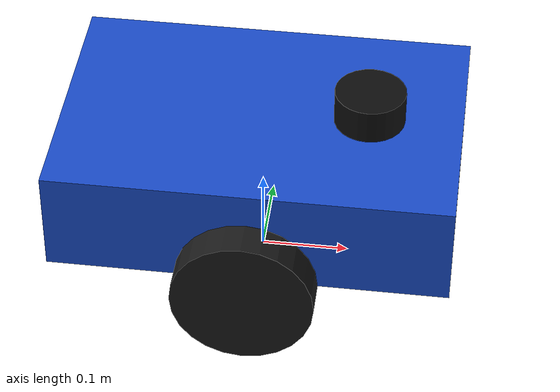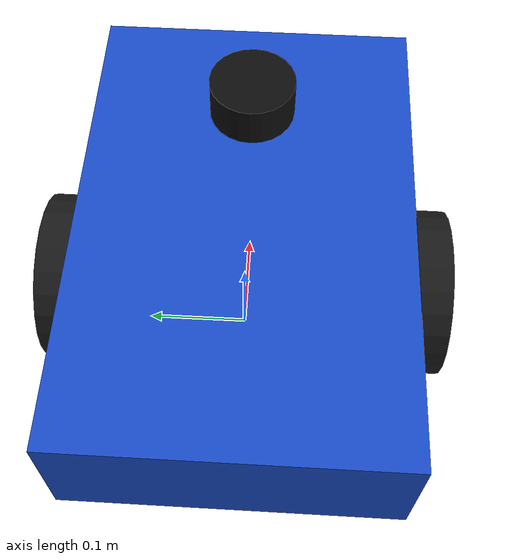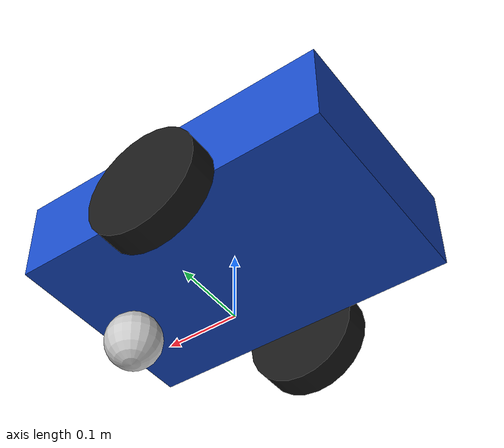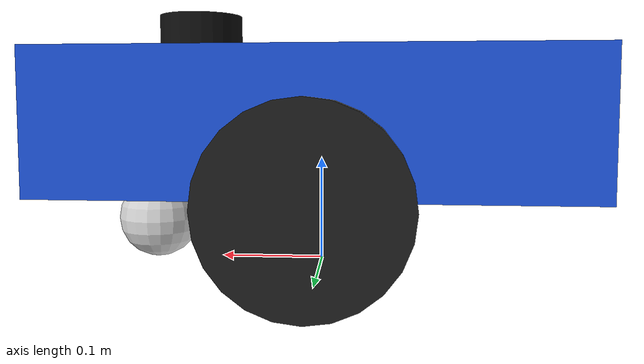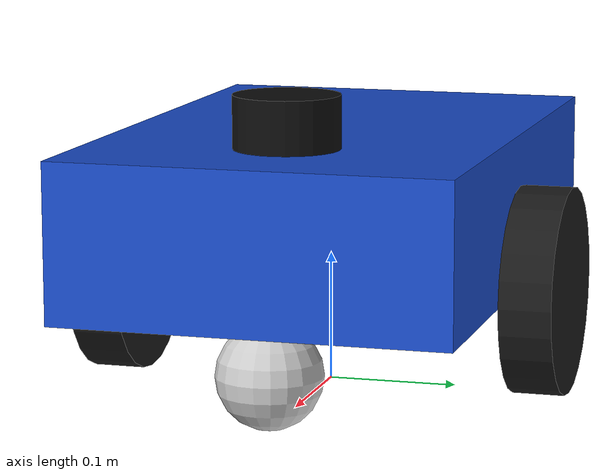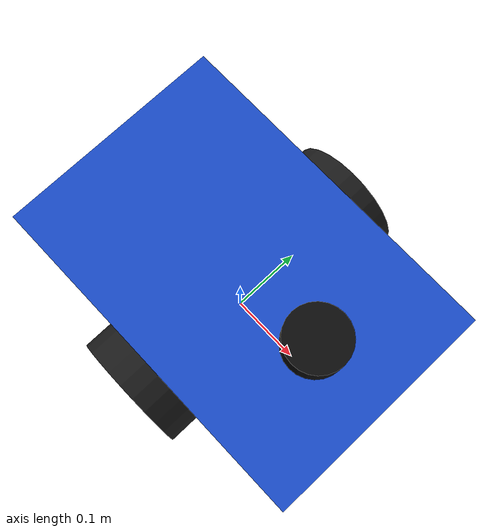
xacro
<?xml version="1.0"?>
<robot xmlns:xacro="http://www.ros.org/wiki/xacro" name="diffbot">

  <!-- 1. 物理参数与惯性张量 (Inertia) 计算宏       -->
  <xacro:property name="chassis_mass"   value="6.0"/> <!-- kg -->
  <xacro:property name="chassis_length" value="0.45"/> <!-- X 方向 (m) -->
  <xacro:property name="chassis_width"  value="0.30"/> <!-- Y 方向 (m) -->
  <xacro:property name="chassis_height" value="0.12"/> <!-- Z 方向 (m) -->

  <xacro:property name="wheel_mass"     value="0.8"/>
  <xacro:property name="wheel_radius"   value="0.08"/> <!-- 8 cm -->
  <xacro:property name="wheel_width"    value="0.04"/> <!-- 4 cm -->
  <xacro:property name="wheel_track"    value="0.34"/> <!-- 轮距 (m) -->

  <xacro:property name="caster_mass"    value="0.3"/>
  <xacro:property name="caster_radius"  value="0.04"/> <!-- 4 cm -->

  <!-- 实用惯性矩阵宏：长方体 -->
  <xacro:macro name="box_inertia" params="m l w h">
    <inertial>
      <mass value="${m}"/>
      <inertia ixx="${(1.0/12.0)*m*(w*w + h*h)}" ixy="0.0" ixz="0.0"
               iyy="${(1.0/12.0)*m*(l*l + h*h)}" iyz="0.0"
               izz="${(1.0/12.0)*m*(l*l + w*w)}"/>
    </inertial>
  </xacro:macro>

  <!-- 实用惯性矩阵宏：圆柱体 (绕 Z 轴旋转对称) -->
  <xacro:macro name="cylinder_inertia" params="m r h">
    <inertial>
      <mass value="${m}"/>
      <inertia ixx="${(1.0/12.0)*m*(3*r*r + h*h)}" ixy="0.0" ixz="0.0"
               iyy="${(1.0/12.0)*m*(3*r*r + h*h)}" iyz="0.0"
               izz="${0.5*m*r*r}"/>
    </inertial>
  </xacro:macro>

  <!-- 2. 坐标基准: base_footprint 与 base_link   -->
  <!-- base_footprint 位于机器人地面水平投影处 (Z=0)，符合 REP-105 规范 -->
  <link name="base_footprint"/>

  <joint name="base_footprint_joint" type="fixed">
    <parent link="base_footprint"/>
    <child link="base_link"/>
    <!-- 将 base_link 抬升至轮子半径高度 -->
    <origin xyz="0 0 ${wheel_radius}" rpy="0 0 0"/>
  </joint>

  <!-- 底盘本体 Link -->
  <link name="base_link">
    <visual>
      <origin xyz="0 0 ${chassis_height/2}" rpy="0 0 0"/>
      <geometry>
        <box size="${chassis_length} ${chassis_width} ${chassis_height}"/>
      </geometry>
      <material name="chassis_blue">
        <color rgba="0.1 0.3 0.8 1.0"/>
      </material>
    </visual>
    <collision>
      <origin xyz="0 0 ${chassis_height/2}" rpy="0 0 0"/>
      <geometry>
        <box size="${chassis_length} ${chassis_width} ${chassis_height}"/>
      </geometry>
    </collision>
    <xacro:box_inertia m="${chassis_mass}" l="${chassis_length}" w="${chassis_width}" h="${chassis_height}"/>
  </link>

  <!-- 3. 左右主动驱动轮 (连续旋转关节)            -->
  <xacro:macro name="wheel" params="prefix y_offset">
    <link name="${prefix}_wheel_link">
      <visual>
        <!-- 默认圆柱沿 Z 轴，旋转 90 度与 Y 轴平行对齐 -->
        <origin xyz="0 0 0" rpy="${pi/2} 0 0"/>
        <geometry>
          <cylinder radius="${wheel_radius}" length="${wheel_width}"/>
        </geometry>
        <material name="rubber_black">
          <color rgba="0.1 0.1 0.1 1.0"/>
        </material>
      </visual>
      <collision>
        <origin xyz="0 0 0" rpy="${pi/2} 0 0"/>
        <geometry>
          <cylinder radius="${wheel_radius}" length="${wheel_width}"/>
        </geometry>
      </collision>
      <xacro:cylinder_inertia m="${wheel_mass}" r="${wheel_radius}" h="${wheel_width}"/>
    </link>

    <joint name="${prefix}_wheel_joint" type="continuous">
      <parent link="base_link"/>
      <child link="${prefix}_wheel_link"/>
      <origin xyz="0 ${y_offset} 0" rpy="0 0 0"/>
      <axis xyz="0 1 0"/> <!-- 绕 Y 轴滚动 -->
    </joint>
  </xacro:macro>

  <xacro:wheel prefix="left"  y_offset="${wheel_track/2}"/>
  <xacro:wheel prefix="right" y_offset="-${wheel_track/2}"/>

  <!-- 4. 前端从动万向支撑轮 (球形)                -->
  <link name="caster_wheel_link">
    <visual>
      <geometry>
        <sphere radius="${caster_radius}"/>
      </geometry>
      <material name="caster_silver">
        <color rgba="0.8 0.8 0.8 1.0"/>
      </material>
    </visual>
    <collision>
      <geometry>
        <sphere radius="${caster_radius}"/>
      </geometry>
    </collision>
    <inertial>
      <mass value="${caster_mass}"/>
      <inertia ixx="${(2.0/5.0)*caster_mass*caster_radius*caster_radius}" ixy="0" ixz="0"
               iyy="${(2.0/5.0)*caster_mass*caster_radius*caster_radius}" iyz="0"
               izz="${(2.0/5.0)*caster_mass*caster_radius*caster_radius}"/>
    </inertial>
  </link>

  <joint name="caster_wheel_joint" type="fixed">
    <parent link="base_link"/>
    <child link="caster_wheel_link"/>
    <!-- 偏置安装在前端，Z 轴落至与地面相切 -->
    <origin xyz="${chassis_length/2 - 0.06} 0 -${wheel_radius - caster_radius}" rpy="0 0 0"/>
  </joint>

  <!-- 5. 2D 激光雷达传感器 Link                   -->
  <link name="laser_link">
    <visual>
      <geometry>
        <cylinder radius="0.04" length="0.04"/>
      </geometry>
      <material name="lidar_black">
        <color rgba="0.05 0.05 0.05 1.0"/>
      </material>
    </visual>
    <collision>
      <geometry>
        <cylinder radius="0.04" length="0.04"/>
      </geometry>
    </collision>
    <inertial>
      <mass value="0.2"/>
      <inertia ixx="0.0001" ixy="0" ixz="0" iyy="0.0001" iyz="0" izz="0.0001"/>
    </inertial>
  </link>

  <joint name="laser_joint" type="fixed">
    <parent link="base_link"/>
    <child link="laser_link"/>
    <origin xyz="0.12 0 ${chassis_height + 0.02}" rpy="0 0 0"/>
  </joint>

  <!-- 6. 6 轴 IMU 惯导单元 Link (中心刚体安装)   -->
  <link name="imu_link">
    <visual>
      <geometry>
        <box size="0.02 0.02 0.005"/>
      </geometry>
      <material name="imu_red">
        <color rgba="0.9 0.1 0.1 1.0"/>
      </material>
    </visual>
    <collision>
      <geometry>
        <box size="0.02 0.02 0.005"/>
      </geometry>
    </collision>
    <inertial>
      <mass value="0.05"/>
      <inertia ixx="0.00001" ixy="0" ixz="0" iyy="0.00001" iyz="0" izz="0.00001"/>
    </inertial>
  </link>

  <joint name="imu_joint" type="fixed">
    <parent link="base_link"/>
    <child link="imu_link"/>
    <!-- 安装在机器人几何与旋转质心处 -->
    <origin xyz="0 0 0.05" rpy="0 0 0"/>
  </joint>

  <!-- 引入 Gazebo 插件与材质定义 -->
  <xacro:include filename="$(find diffbot_nav2)/urdf/diffbot_gazebo.xacro"/>

</robot>
